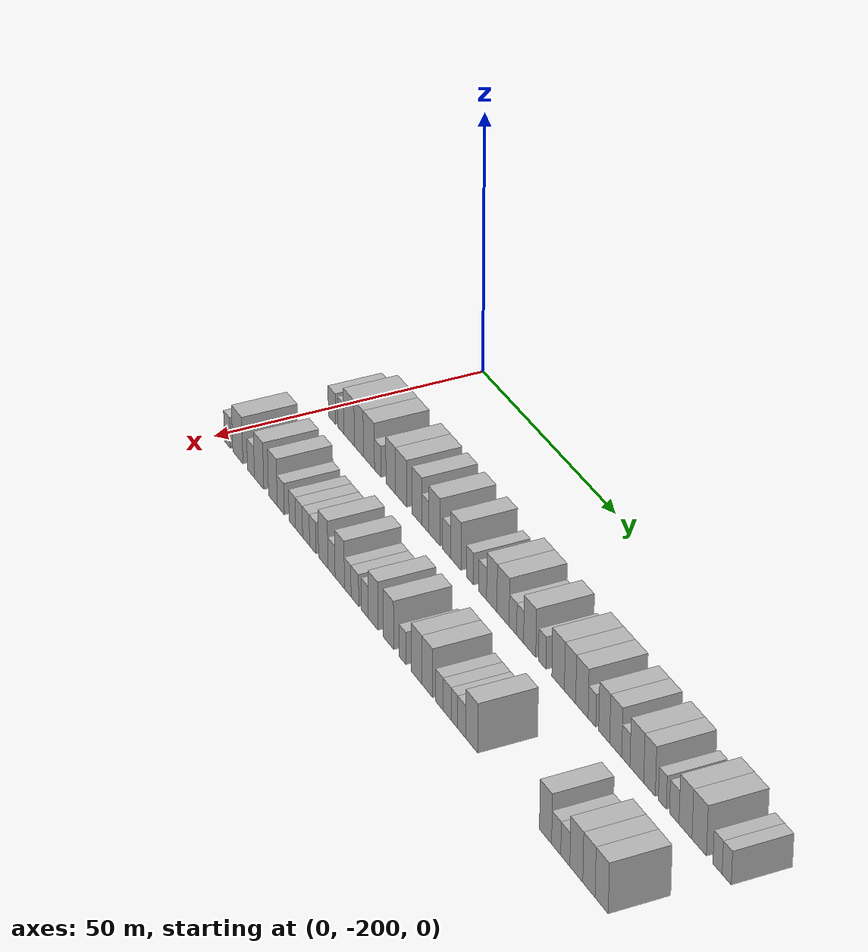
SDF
<sdf version="1.6">
 <world name="default">
  <model name="building_1">
   <static>1</static>
   <pose>25.0000 -196.5242 0 0.000000 0.000000 0.000000</pose>
   <link name="link">
    <pose>0 0 3.00 0 0 0</pose>
    <collision name="collision"><geometry><box><size>10.0000 2.9515 6.0000</size></box></geometry></collision>
    <visual name="visual">
     <cast_shadows>0</cast_shadows>
     <geometry><box><size>10.0000 2.9515 6.0000</size></box></geometry>
     <material>
      <script>
       <uri>model://HANNAS_wall/materials/scripts</uri>
       <uri>model://HANNAS_wall/materials/textures</uri>
       <name>vrc/HANNAS_wall</name>
      </script>
     </material>
    </visual>
   </link>
  </model>
  <model name="building_2">
   <static>1</static>
   <pose>25.0000 -192.8124 0 0.000000 0.000000 0.000000</pose>
   <link name="link">
    <pose>0 0 3.00 0 0 0</pose>
    <collision name="collision"><geometry><box><size>10.0000 2.4722 6.0000</size></box></geometry></collision>
    <visual name="visual">
     <cast_shadows>0</cast_shadows>
     <geometry><box><size>10.0000 2.4722 6.0000</size></box></geometry>
     <material>
      <script>
       <uri>model://HANNAS_wall/materials/scripts</uri>
       <uri>model://HANNAS_wall/materials/textures</uri>
       <name>vrc/HANNAS_wall</name>
      </script>
     </material>
    </visual>
   </link>
  </model>
  <model name="building_3">
   <static>1</static>
   <pose>25.0000 -189.3937 0 0.000000 0.000000 0.000000</pose>
   <link name="link">
    <pose>0 0 4.50 0 0 0</pose>
    <collision name="collision"><geometry><box><size>10.0000 4.3651 9.0000</size></box></geometry></collision>
    <visual name="visual">
     <cast_shadows>0</cast_shadows>
     <geometry><box><size>10.0000 4.3651 9.0000</size></box></geometry>
     <material>
      <script>
       <uri>model://HANNAS_wall/materials/scripts</uri>
       <uri>model://HANNAS_wall/materials/textures</uri>
       <name>vrc/HANNAS_wall</name>
      </script>
     </material>
    </visual>
   </link>
  </model>
  <model name="building_4">
   <static>1</static>
   <pose>25.0000 -185.3602 0 0.000000 0.000000 0.000000</pose>
   <link name="link">
    <pose>0 0 4.50 0 0 0</pose>
    <collision name="collision"><geometry><box><size>10.0000 3.7018 9.0000</size></box></geometry></collision>
    <visual name="visual">
     <cast_shadows>0</cast_shadows>
     <geometry><box><size>10.0000 3.7018 9.0000</size></box></geometry>
     <material>
      <script>
       <uri>model://HANNAS_wall/materials/scripts</uri>
       <uri>model://HANNAS_wall/materials/textures</uri>
       <name>vrc/HANNAS_wall</name>
      </script>
     </material>
    </visual>
   </link>
  </model>
  <model name="building_5">
   <static>1</static>
   <pose>25.0000 -181.2810 0 0.000000 0.000000 0.000000</pose>
   <link name="link">
    <pose>0 0 4.50 0 0 0</pose>
    <collision name="collision"><geometry><box><size>10.0000 4.4566 9.0000</size></box></geometry></collision>
    <visual name="visual">
     <cast_shadows>0</cast_shadows>
     <geometry><box><size>10.0000 4.4566 9.0000</size></box></geometry>
     <material>
      <script>
       <uri>model://HANNAS_wall/materials/scripts</uri>
       <uri>model://HANNAS_wall/materials/textures</uri>
       <name>vrc/HANNAS_wall</name>
      </script>
     </material>
    </visual>
   </link>
  </model>
  <model name="building_6">
   <static>1</static>
   <pose>25.0000 -177.7428 0 0.000000 0.000000 0.000000</pose>
   <link name="link">
    <pose>0 0 3.00 0 0 0</pose>
    <collision name="collision"><geometry><box><size>10.0000 2.6198 6.0000</size></box></geometry></collision>
    <visual name="visual">
     <cast_shadows>0</cast_shadows>
     <geometry><box><size>10.0000 2.6198 6.0000</size></box></geometry>
     <material>
      <script>
       <uri>model://HANNAS_wall/materials/scripts</uri>
       <uri>model://HANNAS_wall/materials/textures</uri>
       <name>vrc/HANNAS_wall</name>
      </script>
     </material>
    </visual>
   </link>
  </model>
  <model name="building_7">
   <static>1</static>
   <pose>25.0000 -172.5616 0 0.000000 0.000000 0.000000</pose>
   <link name="link">
    <pose>0 0 4.50 0 0 0</pose>
    <collision name="collision"><geometry><box><size>10.0000 3.7426 9.0000</size></box></geometry></collision>
    <visual name="visual">
     <cast_shadows>0</cast_shadows>
     <geometry><box><size>10.0000 3.7426 9.0000</size></box></geometry>
     <material>
      <script>
       <uri>model://HANNAS_wall/materials/scripts</uri>
       <uri>model://HANNAS_wall/materials/textures</uri>
       <name>vrc/HANNAS_wall</name>
      </script>
     </material>
    </visual>
   </link>
  </model>
  <model name="building_8">
   <static>1</static>
   <pose>25.0000 -168.4594 0 0.000000 0.000000 0.000000</pose>
   <link name="link">
    <pose>0 0 4.50 0 0 0</pose>
    <collision name="collision"><geometry><box><size>10.0000 4.4617 9.0000</size></box></geometry></collision>
    <visual name="visual">
     <cast_shadows>0</cast_shadows>
     <geometry><box><size>10.0000 4.4617 9.0000</size></box></geometry>
     <material>
      <script>
       <uri>model://HANNAS_wall/materials/scripts</uri>
       <uri>model://HANNAS_wall/materials/textures</uri>
       <name>vrc/HANNAS_wall</name>
      </script>
     </material>
    </visual>
   </link>
  </model>
  <model name="building_9">
   <static>1</static>
   <pose>25.0000 -162.2729 0 0.000000 0.000000 0.000000</pose>
   <link name="link">
    <pose>0 0 4.50 0 0 0</pose>
    <collision name="collision"><geometry><box><size>10.0000 3.9113 9.0000</size></box></geometry></collision>
    <visual name="visual">
     <cast_shadows>0</cast_shadows>
     <geometry><box><size>10.0000 3.9113 9.0000</size></box></geometry>
     <material>
      <script>
       <uri>model://HANNAS_wall/materials/scripts</uri>
       <uri>model://HANNAS_wall/materials/textures</uri>
       <name>vrc/HANNAS_wall</name>
      </script>
     </material>
    </visual>
   </link>
  </model>
  <model name="building_10">
   <static>1</static>
   <pose>25.0000 -159.0052 0 0.000000 0.000000 0.000000</pose>
   <link name="link">
    <pose>0 0 3.00 0 0 0</pose>
    <collision name="collision"><geometry><box><size>10.0000 2.6241 6.0000</size></box></geometry></collision>
    <visual name="visual">
     <cast_shadows>0</cast_shadows>
     <geometry><box><size>10.0000 2.6241 6.0000</size></box></geometry>
     <material>
      <script>
       <uri>model://HANNAS_wall/materials/scripts</uri>
       <uri>model://HANNAS_wall/materials/textures</uri>
       <name>vrc/HANNAS_wall</name>
      </script>
     </material>
    </visual>
   </link>
  </model>
  <model name="building_11">
   <static>1</static>
   <pose>25.0000 -155.5330 0 0.000000 0.000000 0.000000</pose>
   <link name="link">
    <pose>0 0 4.50 0 0 0</pose>
    <collision name="collision"><geometry><box><size>10.0000 4.3203 9.0000</size></box></geometry></collision>
    <visual name="visual">
     <cast_shadows>0</cast_shadows>
     <geometry><box><size>10.0000 4.3203 9.0000</size></box></geometry>
     <material>
      <script>
       <uri>model://HANNAS_wall/materials/scripts</uri>
       <uri>model://HANNAS_wall/materials/textures</uri>
       <name>vrc/HANNAS_wall</name>
      </script>
     </material>
    </visual>
   </link>
  </model>
  <model name="building_12">
   <static>1</static>
   <pose>25.0000 -150.8741 0 0.000000 0.000000 0.000000</pose>
   <link name="link">
    <pose>0 0 3.00 0 0 0</pose>
    <collision name="collision"><geometry><box><size>10.0000 2.9976 6.0000</size></box></geometry></collision>
    <visual name="visual">
     <cast_shadows>0</cast_shadows>
     <geometry><box><size>10.0000 2.9976 6.0000</size></box></geometry>
     <material>
      <script>
       <uri>model://HANNAS_wall/materials/scripts</uri>
       <uri>model://HANNAS_wall/materials/textures</uri>
       <name>vrc/HANNAS_wall</name>
      </script>
     </material>
    </visual>
   </link>
  </model>
  <model name="building_13">
   <static>1</static>
   <pose>25.0000 -147.4346 0 0.000000 0.000000 0.000000</pose>
   <link name="link">
    <pose>0 0 4.50 0 0 0</pose>
    <collision name="collision"><geometry><box><size>10.0000 3.8814 9.0000</size></box></geometry></collision>
    <visual name="visual">
     <cast_shadows>0</cast_shadows>
     <geometry><box><size>10.0000 3.8814 9.0000</size></box></geometry>
     <material>
      <script>
       <uri>model://HANNAS_wall/materials/scripts</uri>
       <uri>model://HANNAS_wall/materials/textures</uri>
       <name>vrc/HANNAS_wall</name>
      </script>
     </material>
    </visual>
   </link>
  </model>
  <model name="building_14">
   <static>1</static>
   <pose>25.0000 -142.1445 0 0.000000 0.000000 0.000000</pose>
   <link name="link">
    <pose>0 0 3.00 0 0 0</pose>
    <collision name="collision"><geometry><box><size>10.0000 2.6989 6.0000</size></box></geometry></collision>
    <visual name="visual">
     <cast_shadows>0</cast_shadows>
     <geometry><box><size>10.0000 2.6989 6.0000</size></box></geometry>
     <material>
      <script>
       <uri>model://HANNAS_wall/materials/scripts</uri>
       <uri>model://HANNAS_wall/materials/textures</uri>
       <name>vrc/HANNAS_wall</name>
      </script>
     </material>
    </visual>
   </link>
  </model>
  <model name="building_15">
   <static>1</static>
   <pose>25.0000 -137.3830 0 0.000000 0.000000 0.000000</pose>
   <link name="link">
    <pose>0 0 3.00 0 0 0</pose>
    <collision name="collision"><geometry><box><size>10.0000 2.8241 6.0000</size></box></geometry></collision>
    <visual name="visual">
     <cast_shadows>0</cast_shadows>
     <geometry><box><size>10.0000 2.8241 6.0000</size></box></geometry>
     <material>
      <script>
       <uri>model://HANNAS_wall/materials/scripts</uri>
       <uri>model://HANNAS_wall/materials/textures</uri>
       <name>vrc/HANNAS_wall</name>
      </script>
     </material>
    </visual>
   </link>
  </model>
  <model name="building_16">
   <static>1</static>
   <pose>25.0000 -134.0629 0 0.000000 0.000000 0.000000</pose>
   <link name="link">
    <pose>0 0 4.50 0 0 0</pose>
    <collision name="collision"><geometry><box><size>10.0000 3.8161 9.0000</size></box></geometry></collision>
    <visual name="visual">
     <cast_shadows>0</cast_shadows>
     <geometry><box><size>10.0000 3.8161 9.0000</size></box></geometry>
     <material>
      <script>
       <uri>model://HANNAS_wall/materials/scripts</uri>
       <uri>model://HANNAS_wall/materials/textures</uri>
       <name>vrc/HANNAS_wall</name>
      </script>
     </material>
    </visual>
   </link>
  </model>
  <model name="building_17">
   <static>1</static>
   <pose>25.0000 -129.9621 0 0.000000 0.000000 0.000000</pose>
   <link name="link">
    <pose>0 0 4.50 0 0 0</pose>
    <collision name="collision"><geometry><box><size>10.0000 4.3854 9.0000</size></box></geometry></collision>
    <visual name="visual">
     <cast_shadows>0</cast_shadows>
     <geometry><box><size>10.0000 4.3854 9.0000</size></box></geometry>
     <material>
      <script>
       <uri>model://HANNAS_wall/materials/scripts</uri>
       <uri>model://HANNAS_wall/materials/textures</uri>
       <name>vrc/HANNAS_wall</name>
      </script>
     </material>
    </visual>
   </link>
  </model>
  <model name="building_18">
   <static>1</static>
   <pose>25.0000 -126.4121 0 0.000000 0.000000 0.000000</pose>
   <link name="link">
    <pose>0 0 3.00 0 0 0</pose>
    <collision name="collision"><geometry><box><size>10.0000 2.7147 6.0000</size></box></geometry></collision>
    <visual name="visual">
     <cast_shadows>0</cast_shadows>
     <geometry><box><size>10.0000 2.7147 6.0000</size></box></geometry>
     <material>
      <script>
       <uri>model://HANNAS_wall/materials/scripts</uri>
       <uri>model://HANNAS_wall/materials/textures</uri>
       <name>vrc/HANNAS_wall</name>
      </script>
     </material>
    </visual>
   </link>
  </model>
  <model name="building_19">
   <static>1</static>
   <pose>25.0000 -123.8324 0 0.000000 0.000000 0.000000</pose>
   <link name="link">
    <pose>0 0 3.00 0 0 0</pose>
    <collision name="collision"><geometry><box><size>10.0000 2.4447 6.0000</size></box></geometry></collision>
    <visual name="visual">
     <cast_shadows>0</cast_shadows>
     <geometry><box><size>10.0000 2.4447 6.0000</size></box></geometry>
     <material>
      <script>
       <uri>model://HANNAS_wall/materials/scripts</uri>
       <uri>model://HANNAS_wall/materials/textures</uri>
       <name>vrc/HANNAS_wall</name>
      </script>
     </material>
    </visual>
   </link>
  </model>
  <model name="building_20">
   <static>1</static>
   <pose>25.0000 -120.4541 0 0.000000 0.000000 0.000000</pose>
   <link name="link">
    <pose>0 0 4.50 0 0 0</pose>
    <collision name="collision"><geometry><box><size>10.0000 4.3119 9.0000</size></box></geometry></collision>
    <visual name="visual">
     <cast_shadows>0</cast_shadows>
     <geometry><box><size>10.0000 4.3119 9.0000</size></box></geometry>
     <material>
      <script>
       <uri>model://HANNAS_wall/materials/scripts</uri>
       <uri>model://HANNAS_wall/materials/textures</uri>
       <name>vrc/HANNAS_wall</name>
      </script>
     </material>
    </visual>
   </link>
  </model>
  <model name="building_21">
   <static>1</static>
   <pose>25.0000 -115.9958 0 0.000000 0.000000 0.000000</pose>
   <link name="link">
    <pose>0 0 3.00 0 0 0</pose>
    <collision name="collision"><geometry><box><size>10.0000 2.6047 6.0000</size></box></geometry></collision>
    <visual name="visual">
     <cast_shadows>0</cast_shadows>
     <geometry><box><size>10.0000 2.6047 6.0000</size></box></geometry>
     <material>
      <script>
       <uri>model://HANNAS_wall/materials/scripts</uri>
       <uri>model://HANNAS_wall/materials/textures</uri>
       <name>vrc/HANNAS_wall</name>
      </script>
     </material>
    </visual>
   </link>
  </model>
  <model name="building_22">
   <static>1</static>
   <pose>25.0000 -110.5119 0 0.000000 0.000000 0.000000</pose>
   <link name="link">
    <pose>0 0 4.50 0 0 0</pose>
    <collision name="collision"><geometry><box><size>10.0000 4.3630 9.0000</size></box></geometry></collision>
    <visual name="visual">
     <cast_shadows>0</cast_shadows>
     <geometry><box><size>10.0000 4.3630 9.0000</size></box></geometry>
     <material>
      <script>
       <uri>model://HANNAS_wall/materials/scripts</uri>
       <uri>model://HANNAS_wall/materials/textures</uri>
       <name>vrc/HANNAS_wall</name>
      </script>
     </material>
    </visual>
   </link>
  </model>
  <model name="building_23">
   <static>1</static>
   <pose>25.0000 -106.3995 0 0.000000 0.000000 0.000000</pose>
   <link name="link">
    <pose>0 0 4.50 0 0 0</pose>
    <collision name="collision"><geometry><box><size>10.0000 3.8619 9.0000</size></box></geometry></collision>
    <visual name="visual">
     <cast_shadows>0</cast_shadows>
     <geometry><box><size>10.0000 3.8619 9.0000</size></box></geometry>
     <material>
      <script>
       <uri>model://HANNAS_wall/materials/scripts</uri>
       <uri>model://HANNAS_wall/materials/textures</uri>
       <name>vrc/HANNAS_wall</name>
      </script>
     </material>
    </visual>
   </link>
  </model>
  <model name="building_24">
   <static>1</static>
   <pose>25.0000 -102.3639 0 0.000000 0.000000 0.000000</pose>
   <link name="link">
    <pose>0 0 4.50 0 0 0</pose>
    <collision name="collision"><geometry><box><size>10.0000 4.2093 9.0000</size></box></geometry></collision>
    <visual name="visual">
     <cast_shadows>0</cast_shadows>
     <geometry><box><size>10.0000 4.2093 9.0000</size></box></geometry>
     <material>
      <script>
       <uri>model://HANNAS_wall/materials/scripts</uri>
       <uri>model://HANNAS_wall/materials/textures</uri>
       <name>vrc/HANNAS_wall</name>
      </script>
     </material>
    </visual>
   </link>
  </model>
  <model name="building_25">
   <static>1</static>
   <pose>25.0000 -98.9838 0 0.000000 0.000000 0.000000</pose>
   <link name="link">
    <pose>0 0 3.00 0 0 0</pose>
    <collision name="collision"><geometry><box><size>10.0000 2.5509 6.0000</size></box></geometry></collision>
    <visual name="visual">
     <cast_shadows>0</cast_shadows>
     <geometry><box><size>10.0000 2.5509 6.0000</size></box></geometry>
     <material>
      <script>
       <uri>model://HANNAS_wall/materials/scripts</uri>
       <uri>model://HANNAS_wall/materials/textures</uri>
       <name>vrc/HANNAS_wall</name>
      </script>
     </material>
    </visual>
   </link>
  </model>
  <model name="building_26">
   <static>1</static>
   <pose>25.0000 -94.8883 0 0.000000 0.000000 0.000000</pose>
   <link name="link">
    <pose>0 0 4.50 0 0 0</pose>
    <collision name="collision"><geometry><box><size>10.0000 3.6400 9.0000</size></box></geometry></collision>
    <visual name="visual">
     <cast_shadows>0</cast_shadows>
     <geometry><box><size>10.0000 3.6400 9.0000</size></box></geometry>
     <material>
      <script>
       <uri>model://HANNAS_wall/materials/scripts</uri>
       <uri>model://HANNAS_wall/materials/textures</uri>
       <name>vrc/HANNAS_wall</name>
      </script>
     </material>
    </visual>
   </link>
  </model>
  <model name="building_27">
   <static>1</static>
   <pose>25.0000 -91.0747 0 0.000000 0.000000 0.000000</pose>
   <link name="link">
    <pose>0 0 4.50 0 0 0</pose>
    <collision name="collision"><geometry><box><size>10.0000 3.9872 9.0000</size></box></geometry></collision>
    <visual name="visual">
     <cast_shadows>0</cast_shadows>
     <geometry><box><size>10.0000 3.9872 9.0000</size></box></geometry>
     <material>
      <script>
       <uri>model://HANNAS_wall/materials/scripts</uri>
       <uri>model://HANNAS_wall/materials/textures</uri>
       <name>vrc/HANNAS_wall</name>
      </script>
     </material>
    </visual>
   </link>
  </model>
  <model name="building_28">
   <static>1</static>
   <pose>25.0000 -87.7327 0 0.000000 0.000000 0.000000</pose>
   <link name="link">
    <pose>0 0 3.00 0 0 0</pose>
    <collision name="collision"><geometry><box><size>10.0000 2.6968 6.0000</size></box></geometry></collision>
    <visual name="visual">
     <cast_shadows>0</cast_shadows>
     <geometry><box><size>10.0000 2.6968 6.0000</size></box></geometry>
     <material>
      <script>
       <uri>model://HANNAS_wall/materials/scripts</uri>
       <uri>model://HANNAS_wall/materials/textures</uri>
       <name>vrc/HANNAS_wall</name>
      </script>
     </material>
    </visual>
   </link>
  </model>
  <model name="building_29">
   <static>1</static>
   <pose>25.0000 -84.1509 0 0.000000 0.000000 0.000000</pose>
   <link name="link">
    <pose>0 0 4.50 0 0 0</pose>
    <collision name="collision"><geometry><box><size>10.0000 4.4668 9.0000</size></box></geometry></collision>
    <visual name="visual">
     <cast_shadows>0</cast_shadows>
     <geometry><box><size>10.0000 4.4668 9.0000</size></box></geometry>
     <material>
      <script>
       <uri>model://HANNAS_wall/materials/scripts</uri>
       <uri>model://HANNAS_wall/materials/textures</uri>
       <name>vrc/HANNAS_wall</name>
      </script>
     </material>
    </visual>
   </link>
  </model>
  <model name="building_30">
   <static>1</static>
   <pose>25.0000 -80.0472 0 0.000000 0.000000 0.000000</pose>
   <link name="link">
    <pose>0 0 4.50 0 0 0</pose>
    <collision name="collision"><geometry><box><size>10.0000 3.7407 9.0000</size></box></geometry></collision>
    <visual name="visual">
     <cast_shadows>0</cast_shadows>
     <geometry><box><size>10.0000 3.7407 9.0000</size></box></geometry>
     <material>
      <script>
       <uri>model://HANNAS_wall/materials/scripts</uri>
       <uri>model://HANNAS_wall/materials/textures</uri>
       <name>vrc/HANNAS_wall</name>
      </script>
     </material>
    </visual>
   </link>
  </model>
  <model name="building_31">
   <static>1</static>
   <pose>25.0000 -75.9265 0 0.000000 0.000000 0.000000</pose>
   <link name="link">
    <pose>0 0 3.00 0 0 0</pose>
    <collision name="collision"><geometry><box><size>10.0000 2.5007 6.0000</size></box></geometry></collision>
    <visual name="visual">
     <cast_shadows>0</cast_shadows>
     <geometry><box><size>10.0000 2.5007 6.0000</size></box></geometry>
     <material>
      <script>
       <uri>model://HANNAS_wall/materials/scripts</uri>
       <uri>model://HANNAS_wall/materials/textures</uri>
       <name>vrc/HANNAS_wall</name>
      </script>
     </material>
    </visual>
   </link>
  </model>
  <model name="building_32">
   <static>1</static>
   <pose>25.0000 -72.1785 0 0.000000 0.000000 0.000000</pose>
   <link name="link">
    <pose>0 0 3.00 0 0 0</pose>
    <collision name="collision"><geometry><box><size>10.0000 2.9952 6.0000</size></box></geometry></collision>
    <visual name="visual">
     <cast_shadows>0</cast_shadows>
     <geometry><box><size>10.0000 2.9952 6.0000</size></box></geometry>
     <material>
      <script>
       <uri>model://HANNAS_wall/materials/scripts</uri>
       <uri>model://HANNAS_wall/materials/textures</uri>
       <name>vrc/HANNAS_wall</name>
      </script>
     </material>
    </visual>
   </link>
  </model>
  <model name="building_33">
   <static>1</static>
   <pose>25.0000 -68.6379 0 0.000000 0.000000 0.000000</pose>
   <link name="link">
    <pose>0 0 4.50 0 0 0</pose>
    <collision name="collision"><geometry><box><size>10.0000 4.0860 9.0000</size></box></geometry></collision>
    <visual name="visual">
     <cast_shadows>0</cast_shadows>
     <geometry><box><size>10.0000 4.0860 9.0000</size></box></geometry>
     <material>
      <script>
       <uri>model://HANNAS_wall/materials/scripts</uri>
       <uri>model://HANNAS_wall/materials/textures</uri>
       <name>vrc/HANNAS_wall</name>
      </script>
     </material>
    </visual>
   </link>
  </model>
  <model name="building_34">
   <static>1</static>
   <pose>25.0000 -64.3615 0 0.000000 0.000000 0.000000</pose>
   <link name="link">
    <pose>0 0 4.50 0 0 0</pose>
    <collision name="collision"><geometry><box><size>10.0000 4.4669 9.0000</size></box></geometry></collision>
    <visual name="visual">
     <cast_shadows>0</cast_shadows>
     <geometry><box><size>10.0000 4.4669 9.0000</size></box></geometry>
     <material>
      <script>
       <uri>model://HANNAS_wall/materials/scripts</uri>
       <uri>model://HANNAS_wall/materials/textures</uri>
       <name>vrc/HANNAS_wall</name>
      </script>
     </material>
    </visual>
   </link>
  </model>
  <model name="building_35">
   <static>1</static>
   <pose>25.0000 -58.7191 0 0.000000 0.000000 0.000000</pose>
   <link name="link">
    <pose>0 0 3.00 0 0 0</pose>
    <collision name="collision"><geometry><box><size>10.0000 2.8178 6.0000</size></box></geometry></collision>
    <visual name="visual">
     <cast_shadows>0</cast_shadows>
     <geometry><box><size>10.0000 2.8178 6.0000</size></box></geometry>
     <material>
      <script>
       <uri>model://HANNAS_wall/materials/scripts</uri>
       <uri>model://HANNAS_wall/materials/textures</uri>
       <name>vrc/HANNAS_wall</name>
      </script>
     </material>
    </visual>
   </link>
  </model>
  <model name="building_36">
   <static>1</static>
   <pose>25.0000 -55.9275 0 0.000000 0.000000 0.000000</pose>
   <link name="link">
    <pose>0 0 3.00 0 0 0</pose>
    <collision name="collision"><geometry><box><size>10.0000 2.7654 6.0000</size></box></geometry></collision>
    <visual name="visual">
     <cast_shadows>0</cast_shadows>
     <geometry><box><size>10.0000 2.7654 6.0000</size></box></geometry>
     <material>
      <script>
       <uri>model://HANNAS_wall/materials/scripts</uri>
       <uri>model://HANNAS_wall/materials/textures</uri>
       <name>vrc/HANNAS_wall</name>
      </script>
     </material>
    </visual>
   </link>
  </model>
  <model name="building_105">
   <static>1</static>
   <pose>44.0000 -196.6971 0 0.000000 0.000000 0.000000</pose>
   <link name="link">
    <pose>0 0 3.00 0 0 0</pose>
    <collision name="collision"><geometry><box><size>10.0000 2.6058 6.0000</size></box></geometry></collision>
    <visual name="visual">
     <cast_shadows>0</cast_shadows>
     <geometry><box><size>10.0000 2.6058 6.0000</size></box></geometry>
     <material>
      <script>
       <uri>model://HANNAS_wall/materials/scripts</uri>
       <uri>model://HANNAS_wall/materials/textures</uri>
       <name>vrc/HANNAS_wall</name>
      </script>
     </material>
    </visual>
   </link>
  </model>
  <model name="building_106">
   <static>1</static>
   <pose>44.0000 -192.2103 0 0.000000 0.000000 0.000000</pose>
   <link name="link">
    <pose>0 0 4.50 0 0 0</pose>
    <collision name="collision"><geometry><box><size>10.0000 4.3680 9.0000</size></box></geometry></collision>
    <visual name="visual">
     <cast_shadows>0</cast_shadows>
     <geometry><box><size>10.0000 4.3680 9.0000</size></box></geometry>
     <material>
      <script>
       <uri>model://HANNAS_wall/materials/scripts</uri>
       <uri>model://HANNAS_wall/materials/textures</uri>
       <name>vrc/HANNAS_wall</name>
      </script>
     </material>
    </visual>
   </link>
  </model>
  <model name="building_107">
   <static>1</static>
   <pose>44.0000 -186.5565 0 0.000000 0.000000 0.000000</pose>
   <link name="link">
    <pose>0 0 3.00 0 0 0</pose>
    <collision name="collision"><geometry><box><size>10.0000 2.9395 6.0000</size></box></geometry></collision>
    <visual name="visual">
     <cast_shadows>0</cast_shadows>
     <geometry><box><size>10.0000 2.9395 6.0000</size></box></geometry>
     <material>
      <script>
       <uri>model://HANNAS_wall/materials/scripts</uri>
       <uri>model://HANNAS_wall/materials/textures</uri>
       <name>vrc/HANNAS_wall</name>
      </script>
     </material>
    </visual>
   </link>
  </model>
  <model name="building_108">
   <static>1</static>
   <pose>44.0000 -183.1201 0 0.000000 0.000000 0.000000</pose>
   <link name="link">
    <pose>0 0 4.50 0 0 0</pose>
    <collision name="collision"><geometry><box><size>10.0000 3.9334 9.0000</size></box></geometry></collision>
    <visual name="visual">
     <cast_shadows>0</cast_shadows>
     <geometry><box><size>10.0000 3.9334 9.0000</size></box></geometry>
     <material>
      <script>
       <uri>model://HANNAS_wall/materials/scripts</uri>
       <uri>model://HANNAS_wall/materials/textures</uri>
       <name>vrc/HANNAS_wall</name>
      </script>
     </material>
    </visual>
   </link>
  </model>
  <model name="building_109">
   <static>1</static>
   <pose>44.0000 -177.3439 0 0.000000 0.000000 0.000000</pose>
   <link name="link">
    <pose>0 0 4.50 0 0 0</pose>
    <collision name="collision"><geometry><box><size>10.0000 3.6190 9.0000</size></box></geometry></collision>
    <visual name="visual">
     <cast_shadows>0</cast_shadows>
     <geometry><box><size>10.0000 3.6190 9.0000</size></box></geometry>
     <material>
      <script>
       <uri>model://HANNAS_wall/materials/scripts</uri>
       <uri>model://HANNAS_wall/materials/textures</uri>
       <name>vrc/HANNAS_wall</name>
      </script>
     </material>
    </visual>
   </link>
  </model>
  <model name="building_110">
   <static>1</static>
   <pose>44.0000 -174.0780 0 0.000000 0.000000 0.000000</pose>
   <link name="link">
    <pose>0 0 3.00 0 0 0</pose>
    <collision name="collision"><geometry><box><size>10.0000 2.9128 6.0000</size></box></geometry></collision>
    <visual name="visual">
     <cast_shadows>0</cast_shadows>
     <geometry><box><size>10.0000 2.9128 6.0000</size></box></geometry>
     <material>
      <script>
       <uri>model://HANNAS_wall/materials/scripts</uri>
       <uri>model://HANNAS_wall/materials/textures</uri>
       <name>vrc/HANNAS_wall</name>
      </script>
     </material>
    </visual>
   </link>
  </model>
  <model name="building_111">
   <static>1</static>
   <pose>44.0000 -169.3118 0 0.000000 0.000000 0.000000</pose>
   <link name="link">
    <pose>0 0 3.00 0 0 0</pose>
    <collision name="collision"><geometry><box><size>10.0000 2.6195 6.0000</size></box></geometry></collision>
    <visual name="visual">
     <cast_shadows>0</cast_shadows>
     <geometry><box><size>10.0000 2.6195 6.0000</size></box></geometry>
     <material>
      <script>
       <uri>model://HANNAS_wall/materials/scripts</uri>
       <uri>model://HANNAS_wall/materials/textures</uri>
       <name>vrc/HANNAS_wall</name>
      </script>
     </material>
    </visual>
   </link>
  </model>
  <model name="building_112">
   <static>1</static>
   <pose>44.0000 -166.5690 0 0.000000 0.000000 0.000000</pose>
   <link name="link">
    <pose>0 0 3.00 0 0 0</pose>
    <collision name="collision"><geometry><box><size>10.0000 2.8662 6.0000</size></box></geometry></collision>
    <visual name="visual">
     <cast_shadows>0</cast_shadows>
     <geometry><box><size>10.0000 2.8662 6.0000</size></box></geometry>
     <material>
      <script>
       <uri>model://HANNAS_wall/materials/scripts</uri>
       <uri>model://HANNAS_wall/materials/textures</uri>
       <name>vrc/HANNAS_wall</name>
      </script>
     </material>
    </visual>
   </link>
  </model>
  <model name="building_113">
   <static>1</static>
   <pose>44.0000 -163.7237 0 0.000000 0.000000 0.000000</pose>
   <link name="link">
    <pose>0 0 3.00 0 0 0</pose>
    <collision name="collision"><geometry><box><size>10.0000 2.8244 6.0000</size></box></geometry></collision>
    <visual name="visual">
     <cast_shadows>0</cast_shadows>
     <geometry><box><size>10.0000 2.8244 6.0000</size></box></geometry>
     <material>
      <script>
       <uri>model://HANNAS_wall/materials/scripts</uri>
       <uri>model://HANNAS_wall/materials/textures</uri>
       <name>vrc/HANNAS_wall</name>
      </script>
     </material>
    </visual>
   </link>
  </model>
  <model name="building_114">
   <static>1</static>
   <pose>44.0000 -160.9991 0 0.000000 0.000000 0.000000</pose>
   <link name="link">
    <pose>0 0 3.00 0 0 0</pose>
    <collision name="collision"><geometry><box><size>10.0000 2.6246 6.0000</size></box></geometry></collision>
    <visual name="visual">
     <cast_shadows>0</cast_shadows>
     <geometry><box><size>10.0000 2.6246 6.0000</size></box></geometry>
     <material>
      <script>
       <uri>model://HANNAS_wall/materials/scripts</uri>
       <uri>model://HANNAS_wall/materials/textures</uri>
       <name>vrc/HANNAS_wall</name>
      </script>
     </material>
    </visual>
   </link>
  </model>
  <model name="building_115">
   <static>1</static>
   <pose>44.0000 -156.7954 0 0.000000 0.000000 0.000000</pose>
   <link name="link">
    <pose>0 0 4.50 0 0 0</pose>
    <collision name="collision"><geometry><box><size>10.0000 3.7830 9.0000</size></box></geometry></collision>
    <visual name="visual">
     <cast_shadows>0</cast_shadows>
     <geometry><box><size>10.0000 3.7830 9.0000</size></box></geometry>
     <material>
      <script>
       <uri>model://HANNAS_wall/materials/scripts</uri>
       <uri>model://HANNAS_wall/materials/textures</uri>
       <name>vrc/HANNAS_wall</name>
      </script>
     </material>
    </visual>
   </link>
  </model>
  <model name="building_116">
   <static>1</static>
   <pose>44.0000 -153.5171 0 0.000000 0.000000 0.000000</pose>
   <link name="link">
    <pose>0 0 3.00 0 0 0</pose>
    <collision name="collision"><geometry><box><size>10.0000 2.7736 6.0000</size></box></geometry></collision>
    <visual name="visual">
     <cast_shadows>0</cast_shadows>
     <geometry><box><size>10.0000 2.7736 6.0000</size></box></geometry>
     <material>
      <script>
       <uri>model://HANNAS_wall/materials/scripts</uri>
       <uri>model://HANNAS_wall/materials/textures</uri>
       <name>vrc/HANNAS_wall</name>
      </script>
     </material>
    </visual>
   </link>
  </model>
  <model name="building_117">
   <static>1</static>
   <pose>44.0000 -150.2755 0 0.000000 0.000000 0.000000</pose>
   <link name="link">
    <pose>0 0 4.50 0 0 0</pose>
    <collision name="collision"><geometry><box><size>10.0000 3.7096 9.0000</size></box></geometry></collision>
    <visual name="visual">
     <cast_shadows>0</cast_shadows>
     <geometry><box><size>10.0000 3.7096 9.0000</size></box></geometry>
     <material>
      <script>
       <uri>model://HANNAS_wall/materials/scripts</uri>
       <uri>model://HANNAS_wall/materials/textures</uri>
       <name>vrc/HANNAS_wall</name>
      </script>
     </material>
    </visual>
   </link>
  </model>
  <model name="building_118">
   <static>1</static>
   <pose>44.0000 -147.1418 0 0.000000 0.000000 0.000000</pose>
   <link name="link">
    <pose>0 0 3.00 0 0 0</pose>
    <collision name="collision"><geometry><box><size>10.0000 2.5578 6.0000</size></box></geometry></collision>
    <visual name="visual">
     <cast_shadows>0</cast_shadows>
     <geometry><box><size>10.0000 2.5578 6.0000</size></box></geometry>
     <material>
      <script>
       <uri>model://HANNAS_wall/materials/scripts</uri>
       <uri>model://HANNAS_wall/materials/textures</uri>
       <name>vrc/HANNAS_wall</name>
      </script>
     </material>
    </visual>
   </link>
  </model>
  <model name="building_119">
   <static>1</static>
   <pose>44.0000 -144.3736 0 0.000000 0.000000 0.000000</pose>
   <link name="link">
    <pose>0 0 3.00 0 0 0</pose>
    <collision name="collision"><geometry><box><size>10.0000 2.9785 6.0000</size></box></geometry></collision>
    <visual name="visual">
     <cast_shadows>0</cast_shadows>
     <geometry><box><size>10.0000 2.9785 6.0000</size></box></geometry>
     <material>
      <script>
       <uri>model://HANNAS_wall/materials/scripts</uri>
       <uri>model://HANNAS_wall/materials/textures</uri>
       <name>vrc/HANNAS_wall</name>
      </script>
     </material>
    </visual>
   </link>
  </model>
  <model name="building_120">
   <static>1</static>
   <pose>44.0000 -140.5534 0 0.000000 0.000000 0.000000</pose>
   <link name="link">
    <pose>0 0 3.00 0 0 0</pose>
    <collision name="collision"><geometry><box><size>10.0000 2.6619 6.0000</size></box></geometry></collision>
    <visual name="visual">
     <cast_shadows>0</cast_shadows>
     <geometry><box><size>10.0000 2.6619 6.0000</size></box></geometry>
     <material>
      <script>
       <uri>model://HANNAS_wall/materials/scripts</uri>
       <uri>model://HANNAS_wall/materials/textures</uri>
       <name>vrc/HANNAS_wall</name>
      </script>
     </material>
    </visual>
   </link>
  </model>
  <model name="building_121">
   <static>1</static>
   <pose>44.0000 -137.3662 0 0.000000 0.000000 0.000000</pose>
   <link name="link">
    <pose>0 0 4.50 0 0 0</pose>
    <collision name="collision"><geometry><box><size>10.0000 3.7125 9.0000</size></box></geometry></collision>
    <visual name="visual">
     <cast_shadows>0</cast_shadows>
     <geometry><box><size>10.0000 3.7125 9.0000</size></box></geometry>
     <material>
      <script>
       <uri>model://HANNAS_wall/materials/scripts</uri>
       <uri>model://HANNAS_wall/materials/textures</uri>
       <name>vrc/HANNAS_wall</name>
      </script>
     </material>
    </visual>
   </link>
  </model>
  <model name="building_122">
   <static>1</static>
   <pose>44.0000 -131.5418 0 0.000000 0.000000 0.000000</pose>
   <link name="link">
    <pose>0 0 4.50 0 0 0</pose>
    <collision name="collision"><geometry><box><size>10.0000 3.9363 9.0000</size></box></geometry></collision>
    <visual name="visual">
     <cast_shadows>0</cast_shadows>
     <geometry><box><size>10.0000 3.9363 9.0000</size></box></geometry>
     <material>
      <script>
       <uri>model://HANNAS_wall/materials/scripts</uri>
       <uri>model://HANNAS_wall/materials/textures</uri>
       <name>vrc/HANNAS_wall</name>
      </script>
     </material>
    </visual>
   </link>
  </model>
  <model name="building_123">
   <static>1</static>
   <pose>44.0000 -126.3023 0 0.000000 0.000000 0.000000</pose>
   <link name="link">
    <pose>0 0 3.00 0 0 0</pose>
    <collision name="collision"><geometry><box><size>10.0000 2.5428 6.0000</size></box></geometry></collision>
    <visual name="visual">
     <cast_shadows>0</cast_shadows>
     <geometry><box><size>10.0000 2.5428 6.0000</size></box></geometry>
     <material>
      <script>
       <uri>model://HANNAS_wall/materials/scripts</uri>
       <uri>model://HANNAS_wall/materials/textures</uri>
       <name>vrc/HANNAS_wall</name>
      </script>
     </material>
    </visual>
   </link>
  </model>
  <model name="building_124">
   <static>1</static>
   <pose>44.0000 -121.1284 0 0.000000 0.000000 0.000000</pose>
   <link name="link">
    <pose>0 0 4.50 0 0 0</pose>
    <collision name="collision"><geometry><box><size>10.0000 3.8048 9.0000</size></box></geometry></collision>
    <visual name="visual">
     <cast_shadows>0</cast_shadows>
     <geometry><box><size>10.0000 3.8048 9.0000</size></box></geometry>
     <material>
      <script>
       <uri>model://HANNAS_wall/materials/scripts</uri>
       <uri>model://HANNAS_wall/materials/textures</uri>
       <name>vrc/HANNAS_wall</name>
      </script>
     </material>
    </visual>
   </link>
  </model>
  <model name="building_125">
   <static>1</static>
   <pose>44.0000 -117.2162 0 0.000000 0.000000 0.000000</pose>
   <link name="link">
    <pose>0 0 4.50 0 0 0</pose>
    <collision name="collision"><geometry><box><size>10.0000 4.0195 9.0000</size></box></geometry></collision>
    <visual name="visual">
     <cast_shadows>0</cast_shadows>
     <geometry><box><size>10.0000 4.0195 9.0000</size></box></geometry>
     <material>
      <script>
       <uri>model://HANNAS_wall/materials/scripts</uri>
       <uri>model://HANNAS_wall/materials/textures</uri>
       <name>vrc/HANNAS_wall</name>
      </script>
     </material>
    </visual>
   </link>
  </model>
  <model name="building_126">
   <static>1</static>
   <pose>44.0000 -112.8391 0 0.000000 0.000000 0.000000</pose>
   <link name="link">
    <pose>0 0 3.00 0 0 0</pose>
    <collision name="collision"><geometry><box><size>10.0000 2.7347 6.0000</size></box></geometry></collision>
    <visual name="visual">
     <cast_shadows>0</cast_shadows>
     <geometry><box><size>10.0000 2.7347 6.0000</size></box></geometry>
     <material>
      <script>
       <uri>model://HANNAS_wall/materials/scripts</uri>
       <uri>model://HANNAS_wall/materials/textures</uri>
       <name>vrc/HANNAS_wall</name>
      </script>
     </material>
    </visual>
   </link>
  </model>
  <model name="building_127">
   <static>1</static>
   <pose>44.0000 -110.0573 0 0.000000 0.000000 0.000000</pose>
   <link name="link">
    <pose>0 0 3.00 0 0 0</pose>
    <collision name="collision"><geometry><box><size>10.0000 2.8288 6.0000</size></box></geometry></collision>
    <visual name="visual">
     <cast_shadows>0</cast_shadows>
     <geometry><box><size>10.0000 2.8288 6.0000</size></box></geometry>
     <material>
      <script>
       <uri>model://HANNAS_wall/materials/scripts</uri>
       <uri>model://HANNAS_wall/materials/textures</uri>
       <name>vrc/HANNAS_wall</name>
      </script>
     </material>
    </visual>
   </link>
  </model>
  <model name="building_128">
   <static>1</static>
   <pose>44.0000 -107.4376 0 0.000000 0.000000 0.000000</pose>
   <link name="link">
    <pose>0 0 3.00 0 0 0</pose>
    <collision name="collision"><geometry><box><size>10.0000 2.4107 6.0000</size></box></geometry></collision>
    <visual name="visual">
     <cast_shadows>0</cast_shadows>
     <geometry><box><size>10.0000 2.4107 6.0000</size></box></geometry>
     <material>
      <script>
       <uri>model://HANNAS_wall/materials/scripts</uri>
       <uri>model://HANNAS_wall/materials/textures</uri>
       <name>vrc/HANNAS_wall</name>
      </script>
     </material>
    </visual>
   </link>
  </model>
  <model name="building_129">
   <static>1</static>
   <pose>44.0000 -104.7994 0 0.000000 0.000000 0.000000</pose>
   <link name="link">
    <pose>0 0 3.00 0 0 0</pose>
    <collision name="collision"><geometry><box><size>10.0000 2.8656 6.0000</size></box></geometry></collision>
    <visual name="visual">
     <cast_shadows>0</cast_shadows>
     <geometry><box><size>10.0000 2.8656 6.0000</size></box></geometry>
     <material>
      <script>
       <uri>model://HANNAS_wall/materials/scripts</uri>
       <uri>model://HANNAS_wall/materials/textures</uri>
       <name>vrc/HANNAS_wall</name>
      </script>
     </material>
    </visual>
   </link>
  </model>
  <model name="building_130">
   <static>1</static>
   <pose>44.0000 -101.2841 0 0.000000 0.000000 0.000000</pose>
   <link name="link">
    <pose>0 0 4.50 0 0 0</pose>
    <collision name="collision"><geometry><box><size>10.0000 4.1651 9.0000</size></box></geometry></collision>
    <visual name="visual">
     <cast_shadows>0</cast_shadows>
     <geometry><box><size>10.0000 4.1651 9.0000</size></box></geometry>
     <material>
      <script>
       <uri>model://HANNAS_wall/materials/scripts</uri>
       <uri>model://HANNAS_wall/materials/textures</uri>
       <name>vrc/HANNAS_wall</name>
      </script>
     </material>
    </visual>
   </link>
  </model>
  <model name="building_131">
   <static>1</static>
   <pose>44.0000 -76.2037 0 0.000000 0.000000 0.000000</pose>
   <link name="link">
    <pose>0 0 4.50 0 0 0</pose>
    <collision name="collision"><geometry><box><size>10.0000 3.9986 9.0000</size></box></geometry></collision>
    <visual name="visual">
     <cast_shadows>0</cast_shadows>
     <geometry><box><size>10.0000 3.9986 9.0000</size></box></geometry>
     <material>
      <script>
       <uri>model://HANNAS_wall/materials/scripts</uri>
       <uri>model://HANNAS_wall/materials/textures</uri>
       <name>vrc/HANNAS_wall</name>
      </script>
     </material>
    </visual>
   </link>
  </model>
  <model name="building_132">
   <static>1</static>
   <pose>44.0000 -72.7141 0 0.000000 0.000000 0.000000</pose>
   <link name="link">
    <pose>0 0 3.00 0 0 0</pose>
    <collision name="collision"><geometry><box><size>10.0000 2.9807 6.0000</size></box></geometry></collision>
    <visual name="visual">
     <cast_shadows>0</cast_shadows>
     <geometry><box><size>10.0000 2.9807 6.0000</size></box></geometry>
     <material>
      <script>
       <uri>model://HANNAS_wall/materials/scripts</uri>
       <uri>model://HANNAS_wall/materials/textures</uri>
       <name>vrc/HANNAS_wall</name>
      </script>
     </material>
    </visual>
   </link>
  </model>
  <model name="building_133">
   <static>1</static>
   <pose>44.0000 -69.7472 0 0.000000 0.000000 0.000000</pose>
   <link name="link">
    <pose>0 0 3.00 0 0 0</pose>
    <collision name="collision"><geometry><box><size>10.0000 2.9531 6.0000</size></box></geometry></collision>
    <visual name="visual">
     <cast_shadows>0</cast_shadows>
     <geometry><box><size>10.0000 2.9531 6.0000</size></box></geometry>
     <material>
      <script>
       <uri>model://HANNAS_wall/materials/scripts</uri>
       <uri>model://HANNAS_wall/materials/textures</uri>
       <name>vrc/HANNAS_wall</name>
      </script>
     </material>
    </visual>
   </link>
  </model>
  <model name="building_134">
   <static>1</static>
   <pose>44.0000 -66.1834 0 0.000000 0.000000 0.000000</pose>
   <link name="link">
    <pose>0 0 4.50 0 0 0</pose>
    <collision name="collision"><geometry><box><size>10.0000 4.1745 9.0000</size></box></geometry></collision>
    <visual name="visual">
     <cast_shadows>0</cast_shadows>
     <geometry><box><size>10.0000 4.1745 9.0000</size></box></geometry>
     <material>
      <script>
       <uri>model://HANNAS_wall/materials/scripts</uri>
       <uri>model://HANNAS_wall/materials/textures</uri>
       <name>vrc/HANNAS_wall</name>
      </script>
     </material>
    </visual>
   </link>
  </model>
  <model name="building_135">
   <static>1</static>
   <pose>44.0000 -62.1445 0 0.000000 0.000000 0.000000</pose>
   <link name="link">
    <pose>0 0 4.50 0 0 0</pose>
    <collision name="collision"><geometry><box><size>10.0000 3.9033 9.0000</size></box></geometry></collision>
    <visual name="visual">
     <cast_shadows>0</cast_shadows>
     <geometry><box><size>10.0000 3.9033 9.0000</size></box></geometry>
     <material>
      <script>
       <uri>model://HANNAS_wall/materials/scripts</uri>
       <uri>model://HANNAS_wall/materials/textures</uri>
       <name>vrc/HANNAS_wall</name>
      </script>
     </material>
    </visual>
   </link>
  </model>
  <model name="building_136">
   <static>1</static>
   <pose>44.0000 -58.1118 0 0.000000 0.000000 0.000000</pose>
   <link name="link">
    <pose>0 0 4.50 0 0 0</pose>
    <collision name="collision"><geometry><box><size>10.0000 4.1620 9.0000</size></box></geometry></collision>
    <visual name="visual">
     <cast_shadows>0</cast_shadows>
     <geometry><box><size>10.0000 4.1620 9.0000</size></box></geometry>
     <material>
      <script>
       <uri>model://HANNAS_wall/materials/scripts</uri>
       <uri>model://HANNAS_wall/materials/textures</uri>
       <name>vrc/HANNAS_wall</name>
      </script>
     </material>
    </visual>
   </link>
  </model>
 </world>
</sdf>
